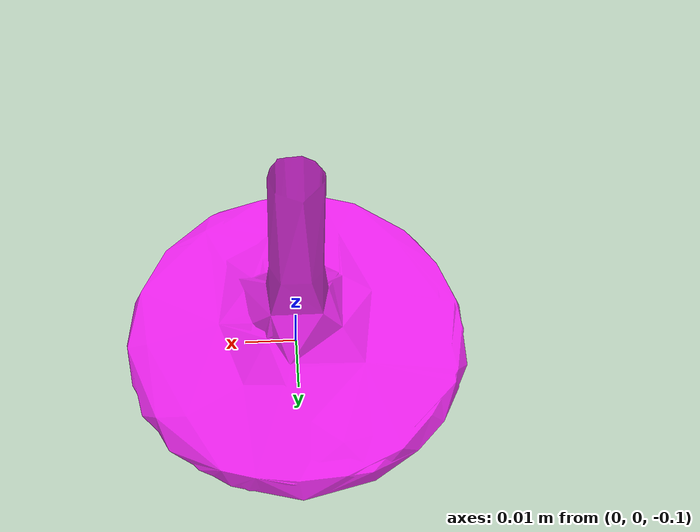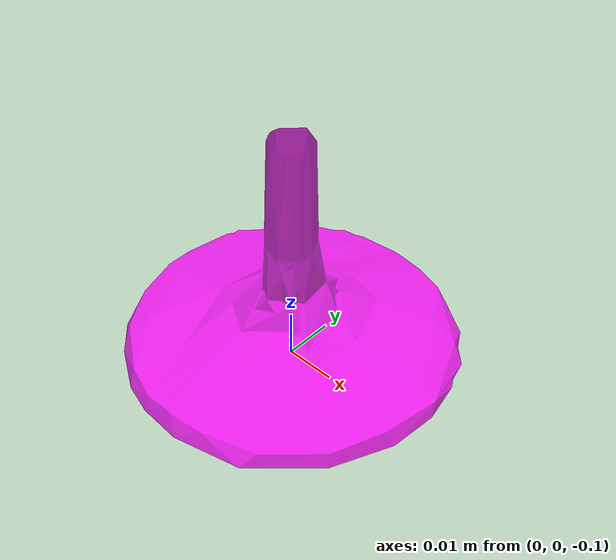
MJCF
<mujoco model="bottom_watertight_tiny">
  <default>
    <default group="2" type="mesh" contype="0" conaffinity="0">
      <geom group="2" type="mesh" contype="0" conaffinity="0"/>
    </default>
    <default group="3" type="mesh">
      <geom group="3" type="mesh"/>
    </default>
  </default>
  <asset>
    <mesh file="bottom_watertight_tiny.obj"/>
    <mesh file="bottom_watertight_tiny_collision_0.obj"/>
    <mesh file="bottom_watertight_tiny_collision_1.obj"/>
    <mesh file="bottom_watertight_tiny_collision_2.obj"/>
    <mesh file="bottom_watertight_tiny_collision_3.obj"/>
    <mesh file="bottom_watertight_tiny_collision_4.obj"/>
    <mesh file="bottom_watertight_tiny_collision_5.obj"/>
    <mesh file="bottom_watertight_tiny_collision_6.obj"/>
    <mesh file="bottom_watertight_tiny_collision_7.obj"/>
    <mesh file="bottom_watertight_tiny_collision_8.obj"/>
    <mesh file="bottom_watertight_tiny_collision_9.obj"/>
    <mesh file="bottom_watertight_tiny_collision_10.obj"/>
    <mesh file="bottom_watertight_tiny_collision_11.obj"/>
    <mesh file="bottom_watertight_tiny_collision_12.obj"/>
    <mesh file="bottom_watertight_tiny_collision_13.obj"/>
    <mesh file="bottom_watertight_tiny_collision_14.obj"/>
    <mesh file="bottom_watertight_tiny_collision_15.obj"/>
    <mesh file="bottom_watertight_tiny_collision_16.obj"/>
    <mesh file="bottom_watertight_tiny_collision_17.obj"/>
    <mesh file="bottom_watertight_tiny_collision_18.obj"/>
    <mesh file="bottom_watertight_tiny_collision_19.obj"/>
    <mesh file="bottom_watertight_tiny_collision_20.obj"/>
    <mesh file="bottom_watertight_tiny_collision_21.obj"/>
    <mesh file="bottom_watertight_tiny_collision_22.obj"/>
    <mesh file="bottom_watertight_tiny_collision_23.obj"/>
    <mesh file="bottom_watertight_tiny_collision_24.obj"/>
    <mesh file="bottom_watertight_tiny_collision_25.obj"/>
    <mesh file="bottom_watertight_tiny_collision_26.obj"/>
    <mesh file="bottom_watertight_tiny_collision_27.obj"/>
    <mesh file="bottom_watertight_tiny_collision_28.obj"/>
    <mesh file="bottom_watertight_tiny_collision_29.obj"/>
    <mesh file="bottom_watertight_tiny_collision_30.obj"/>
    <mesh file="bottom_watertight_tiny_collision_31.obj"/>
    <mesh file="bottom_watertight_tiny_collision_32.obj"/>
    <mesh file="bottom_watertight_tiny_collision_33.obj"/>
    <mesh file="bottom_watertight_tiny_collision_34.obj"/>
    <mesh file="bottom_watertight_tiny_collision_35.obj"/>
    <mesh file="bottom_watertight_tiny_collision_36.obj"/>
    <mesh file="bottom_watertight_tiny_collision_37.obj"/>
    <mesh file="bottom_watertight_tiny_collision_38.obj"/>
    <mesh file="bottom_watertight_tiny_collision_39.obj"/>
    <mesh file="bottom_watertight_tiny_collision_40.obj"/>
    <mesh file="bottom_watertight_tiny_collision_41.obj"/>
    <mesh file="bottom_watertight_tiny_collision_42.obj"/>
    <mesh file="bottom_watertight_tiny_collision_43.obj"/>
    <mesh file="bottom_watertight_tiny_collision_44.obj"/>
    <mesh file="bottom_watertight_tiny_collision_45.obj"/>
    <mesh file="bottom_watertight_tiny_collision_46.obj"/>
    <mesh file="bottom_watertight_tiny_collision_47.obj"/>
    <mesh file="bottom_watertight_tiny_collision_48.obj"/>
    <mesh file="bottom_watertight_tiny_collision_49.obj"/>
    <mesh file="bottom_watertight_tiny_collision_50.obj"/>
    <mesh file="bottom_watertight_tiny_collision_51.obj"/>
    <mesh file="bottom_watertight_tiny_collision_52.obj"/>
    <mesh file="bottom_watertight_tiny_collision_53.obj"/>
    <mesh file="bottom_watertight_tiny_collision_54.obj"/>
    <mesh file="bottom_watertight_tiny_collision_55.obj"/>
    <mesh file="bottom_watertight_tiny_collision_56.obj"/>
    <mesh file="bottom_watertight_tiny_collision_57.obj"/>
    <mesh file="bottom_watertight_tiny_collision_58.obj"/>
    <mesh file="bottom_watertight_tiny_collision_59.obj"/>
    <mesh file="bottom_watertight_tiny_collision_60.obj"/>
    <mesh file="bottom_watertight_tiny_collision_61.obj"/>
    <mesh file="bottom_watertight_tiny_collision_62.obj"/>
    <mesh file="bottom_watertight_tiny_collision_63.obj"/>
    <mesh file="bottom_watertight_tiny_collision_64.obj"/>
    <mesh file="bottom_watertight_tiny_collision_65.obj"/>
  </asset>
  <worldbody>
    <body name="bottom_watertight_tiny">
      <freejoint/>
      <geom mesh="bottom_watertight_tiny" group="2" type="mesh" rgba="1 0 1 0.8" contype="0" conaffinity="0"/>
      <geom mesh="bottom_watertight_tiny_collision_0" rgba="0.9962569477734042 0.8066480682177519 0.6686405924824983 1" group="3" type="mesh"/>
      <geom mesh="bottom_watertight_tiny_collision_1" rgba="0.31734877190139765 0.1189325287899633 0.20650476783541638 1" group="3" type="mesh"/>
      <geom mesh="bottom_watertight_tiny_collision_2" rgba="0.8244473662774056 0.24909917485713617 0.5725059873602617 1" group="3" type="mesh"/>
      <geom mesh="bottom_watertight_tiny_collision_3" rgba="0.07975676630974915 0.15289833414990361 0.45608170503800194 1" group="3" type="mesh"/>
      <geom mesh="bottom_watertight_tiny_collision_4" rgba="0.6105854151367517 0.4808770557319294 0.39148868037363027 1" group="3" type="mesh"/>
      <geom mesh="bottom_watertight_tiny_collision_5" rgba="0.29578850074017105 0.34274204501428973 0.9172875214987747 1" group="3" type="mesh"/>
      <geom mesh="bottom_watertight_tiny_collision_6" rgba="0.7137693915548934 0.8072070049067954 0.10201141113153334 1" group="3" type="mesh"/>
      <geom mesh="bottom_watertight_tiny_collision_7" rgba="0.8590167273731287 0.2837529832781187 0.3870046545111394 1" group="3" type="mesh"/>
      <geom mesh="bottom_watertight_tiny_collision_8" rgba="0.9910738082611509 0.7140240299571866 0.4928934836492105 1" group="3" type="mesh"/>
      <geom mesh="bottom_watertight_tiny_collision_9" rgba="0.7509919515852057 0.22587925291164268 0.8788919992977293 1" group="3" type="mesh"/>
      <geom mesh="bottom_watertight_tiny_collision_10" rgba="0.14202112231302177 0.5512224120584904 0.9539058577078223 1" group="3" type="mesh"/>
      <geom mesh="bottom_watertight_tiny_collision_11" rgba="0.1796433926847787 0.9592855538151404 0.0564767290544238 1" group="3" type="mesh"/>
      <geom mesh="bottom_watertight_tiny_collision_12" rgba="0.8682982871476608 0.466665015111405 0.9577845131828633 1" group="3" type="mesh"/>
      <geom mesh="bottom_watertight_tiny_collision_13" rgba="0.7429420979316687 0.32736317581196606 0.755398454904709 1" group="3" type="mesh"/>
      <geom mesh="bottom_watertight_tiny_collision_14" rgba="0.889286735914576 0.2115061489422052 0.1625405540984416 1" group="3" type="mesh"/>
      <geom mesh="bottom_watertight_tiny_collision_15" rgba="0.7501815050545175 0.816082243830873 0.05033803313266072 1" group="3" type="mesh"/>
      <geom mesh="bottom_watertight_tiny_collision_16" rgba="0.31211919171273617 0.25238275260032383 0.8787252079018281 1" group="3" type="mesh"/>
      <geom mesh="bottom_watertight_tiny_collision_17" rgba="0.6902777559402118 0.6875698245865738 0.8370164678009211 1" group="3" type="mesh"/>
      <geom mesh="bottom_watertight_tiny_collision_18" rgba="0.8062382179214644 0.3819744495373174 0.49715119649704775 1" group="3" type="mesh"/>
      <geom mesh="bottom_watertight_tiny_collision_19" rgba="0.2697551475335753 0.17241825477202055 0.42419434471182293 1" group="3" type="mesh"/>
      <geom mesh="bottom_watertight_tiny_collision_20" rgba="0.5119561675881109 0.14263333423500668 0.9560964499554899 1" group="3" type="mesh"/>
      <geom mesh="bottom_watertight_tiny_collision_21" rgba="0.4112601854735697 0.8983000148000984 0.8808393086380301 1" group="3" type="mesh"/>
      <geom mesh="bottom_watertight_tiny_collision_22" rgba="0.7133366680025944 0.3553633608942669 0.8218102966300512 1" group="3" type="mesh"/>
      <geom mesh="bottom_watertight_tiny_collision_23" rgba="0.6603077002391367 0.3326922659328134 0.23593761702297378 1" group="3" type="mesh"/>
      <geom mesh="bottom_watertight_tiny_collision_24" rgba="0.24789125538950885 0.6509967049502187 0.5068561680628352 1" group="3" type="mesh"/>
      <geom mesh="bottom_watertight_tiny_collision_25" rgba="0.26876618279193365 0.552272878250663 0.5209657369838778 1" group="3" type="mesh"/>
      <geom mesh="bottom_watertight_tiny_collision_26" rgba="0.1487976457900414 0.8433287595434894 0.438132467130423 1" group="3" type="mesh"/>
      <geom mesh="bottom_watertight_tiny_collision_27" rgba="0.31766905945550916 0.8221661385015171 0.8316747532639305 1" group="3" type="mesh"/>
      <geom mesh="bottom_watertight_tiny_collision_28" rgba="0.8766822514828317 0.35571360532474483 0.16264140066628663 1" group="3" type="mesh"/>
      <geom mesh="bottom_watertight_tiny_collision_29" rgba="0.35444526775121266 0.8353760533697981 0.7992743652555931 1" group="3" type="mesh"/>
      <geom mesh="bottom_watertight_tiny_collision_30" rgba="0.14561766000697618 0.5630561397835574 0.46048733129217145 1" group="3" type="mesh"/>
      <geom mesh="bottom_watertight_tiny_collision_31" rgba="0.17425431171915617 0.37471143015157293 0.126176647686717 1" group="3" type="mesh"/>
      <geom mesh="bottom_watertight_tiny_collision_32" rgba="0.7605327940204535 0.3768449459325601 0.3912831239999057 1" group="3" type="mesh"/>
      <geom mesh="bottom_watertight_tiny_collision_33" rgba="0.18400728253010523 0.21106594141829293 0.7795159238911767 1" group="3" type="mesh"/>
      <geom mesh="bottom_watertight_tiny_collision_34" rgba="0.634708987497065 0.37441174657556664 0.2331149812473332 1" group="3" type="mesh"/>
      <geom mesh="bottom_watertight_tiny_collision_35" rgba="0.21247439442060134 0.7297729558421637 0.025969402555301557 1" group="3" type="mesh"/>
      <geom mesh="bottom_watertight_tiny_collision_36" rgba="0.5391128708271599 0.8653871524938043 0.7918106116588536 1" group="3" type="mesh"/>
      <geom mesh="bottom_watertight_tiny_collision_37" rgba="0.6402119272040747 0.8200314209697853 0.33691091734801826 1" group="3" type="mesh"/>
      <geom mesh="bottom_watertight_tiny_collision_38" rgba="0.6199324560747321 0.5571162268527196 0.4777212827075046 1" group="3" type="mesh"/>
      <geom mesh="bottom_watertight_tiny_collision_39" rgba="0.36117857192214187 0.7879127977682112 0.5787351136373968 1" group="3" type="mesh"/>
      <geom mesh="bottom_watertight_tiny_collision_40" rgba="0.8456011312566082 0.6896246947573402 0.9203092227917052 1" group="3" type="mesh"/>
      <geom mesh="bottom_watertight_tiny_collision_41" rgba="0.34649135231197303 0.23410493974870883 0.5315786705753968 1" group="3" type="mesh"/>
      <geom mesh="bottom_watertight_tiny_collision_42" rgba="0.23404275042068867 0.30766355046520766 0.8133604535434111 1" group="3" type="mesh"/>
      <geom mesh="bottom_watertight_tiny_collision_43" rgba="0.4869179093077831 0.7487025383497595 0.5782119779714335 1" group="3" type="mesh"/>
      <geom mesh="bottom_watertight_tiny_collision_44" rgba="0.46693518215003516 0.034454992655102545 0.9218129869877636 1" group="3" type="mesh"/>
      <geom mesh="bottom_watertight_tiny_collision_45" rgba="0.922310624999407 0.20904534386212448 0.8387881235315285 1" group="3" type="mesh"/>
      <geom mesh="bottom_watertight_tiny_collision_46" rgba="0.13791724039748965 0.7353020158492746 0.31266067108134066 1" group="3" type="mesh"/>
      <geom mesh="bottom_watertight_tiny_collision_47" rgba="0.867472702499302 0.15073572949732483 0.31520885666081455 1" group="3" type="mesh"/>
      <geom mesh="bottom_watertight_tiny_collision_48" rgba="0.39528448245827075 0.784079908420963 0.15468166409526607 1" group="3" type="mesh"/>
      <geom mesh="bottom_watertight_tiny_collision_49" rgba="0.7570378101157309 0.3307826906041138 0.5061020727105162 1" group="3" type="mesh"/>
      <geom mesh="bottom_watertight_tiny_collision_50" rgba="0.8438241854538191 0.903784747406149 0.48638859121345057 1" group="3" type="mesh"/>
      <geom mesh="bottom_watertight_tiny_collision_51" rgba="0.5376522098147378 0.5686890093652293 0.5107140453462657 1" group="3" type="mesh"/>
      <geom mesh="bottom_watertight_tiny_collision_52" rgba="0.7831694969564892 0.06601234584665028 0.982934306736256 1" group="3" type="mesh"/>
      <geom mesh="bottom_watertight_tiny_collision_53" rgba="0.09129034144634762 0.1560280231766733 0.13892228848847632 1" group="3" type="mesh"/>
      <geom mesh="bottom_watertight_tiny_collision_54" rgba="0.8193613411802736 0.8734519033152978 0.956091693861642 1" group="3" type="mesh"/>
      <geom mesh="bottom_watertight_tiny_collision_55" rgba="0.5188524366663382 0.1125768519029593 0.4425383102608075 1" group="3" type="mesh"/>
      <geom mesh="bottom_watertight_tiny_collision_56" rgba="0.5673594288961452 0.29229877369882573 0.35722055560389854 1" group="3" type="mesh"/>
      <geom mesh="bottom_watertight_tiny_collision_57" rgba="0.21170370380754922 0.9840840375482195 0.3026719272331927 1" group="3" type="mesh"/>
      <geom mesh="bottom_watertight_tiny_collision_58" rgba="0.19667663838875593 0.9199887902958671 0.7244282192974864 1" group="3" type="mesh"/>
      <geom mesh="bottom_watertight_tiny_collision_59" rgba="0.7382435181813374 0.538562369076099 0.7853917188664797 1" group="3" type="mesh"/>
      <geom mesh="bottom_watertight_tiny_collision_60" rgba="0.34985816242563916 0.2900093206805746 0.5537952191922257 1" group="3" type="mesh"/>
      <geom mesh="bottom_watertight_tiny_collision_61" rgba="0.061733280430528725 0.7651499874763622 0.3869330231003244 1" group="3" type="mesh"/>
      <geom mesh="bottom_watertight_tiny_collision_62" rgba="0.19646350809050583 0.5164790388838729 0.9839068412456574 1" group="3" type="mesh"/>
      <geom mesh="bottom_watertight_tiny_collision_63" rgba="0.3818310338181481 0.4922904919694926 0.09161233419294401 1" group="3" type="mesh"/>
      <geom mesh="bottom_watertight_tiny_collision_64" rgba="0.8373385155635107 0.7883054908254215 0.17378744671306834 1" group="3" type="mesh"/>
      <geom mesh="bottom_watertight_tiny_collision_65" rgba="0.41936741587232784 0.652324407703868 0.49818435970922437 1" group="3" type="mesh"/>
    </body>
  </worldbody>
</mujoco>
